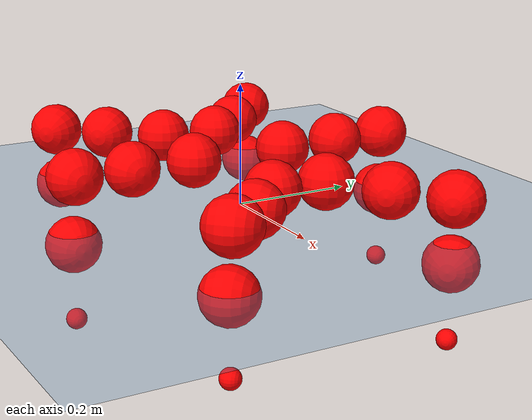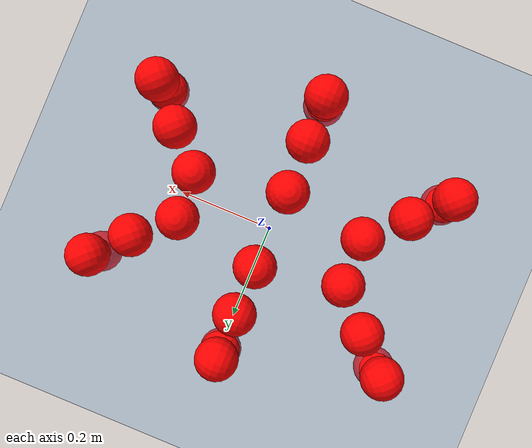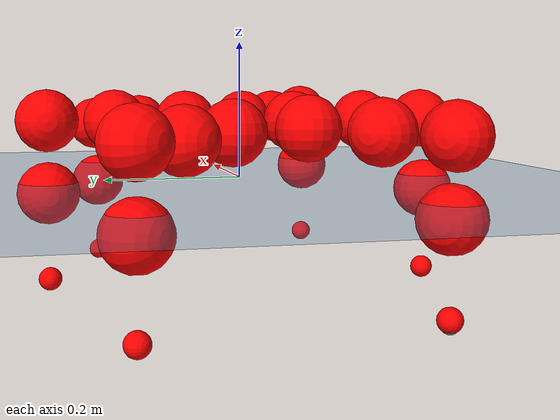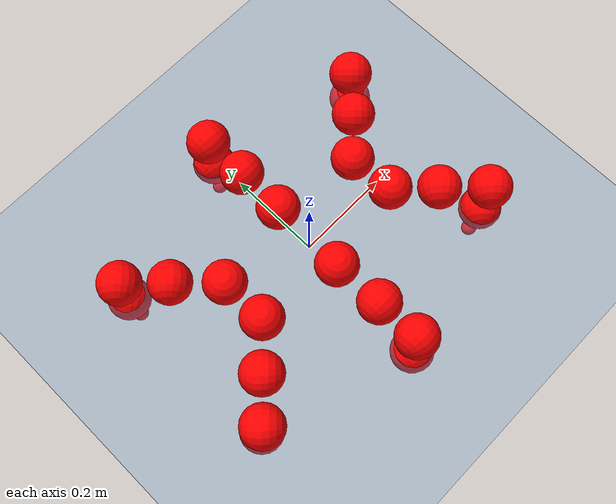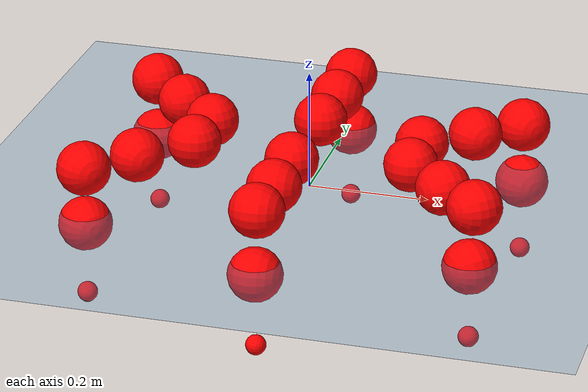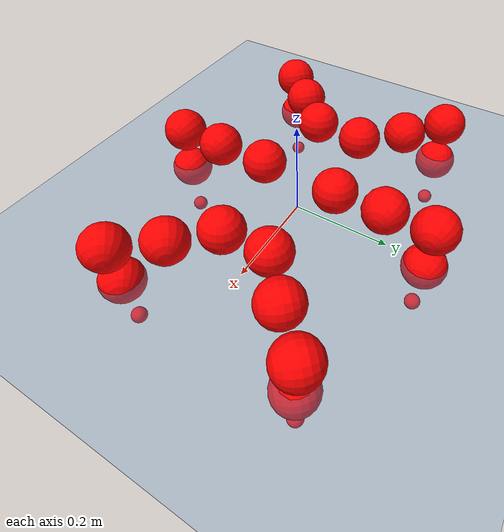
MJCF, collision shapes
<mujoco model="Golem">
  <compiler angle="radian" assetdir="assets" balanceinertia="true" inertiafromgeom="false"/>

  <option timestep="0.005" density="1.2" viscosity="2e-05"/>

  <size nkey="1"/>

  <visual>
    <quality shadowsize="8192"/>
    <map shadowclip="0.5"/>
  </visual>

  <default>
    <default class="/">
      <joint armature="0.01" damping="0.01" frictionloss="0.01"/>
      <geom contype="0" conaffinity="0" group="1" solref="-1000 -80"/>
      <site size="0.01 0.005 0.005" group="5"/>
      <general forcelimited="true" biastype="affine" gainprm="25" biasprm="0 -25 -0.5"/>
      <default class="visual">
        <geom type="mesh" group="2"/>
      </default>
      <default class="collision">
        <geom group="3"/>
      </default>
      <default class="foot">
        <geom size="0.01 0 0" condim="6" group="4" priority="1" solimp="0.015 1 0.01"/>
      </default>
      <default class="reward_collision_sphere">
        <geom group="5" rgba="1 0 0 1"/>
      </default>
    </default>
  </default>

  <asset>
    <texture type="skybox" colorspace="auto" name="//unnamed_texture_0" builtin="gradient" rgb1="0.95 0.95 0.95" rgb2="0.95 0.95 0.95" width="100" height="600"/>
    <texture type="2d" colorspace="auto" name="texplane" builtin="checker" rgb1="0.345 0.575 0.748" rgb2="0.345 0.575 0.748" markrgb="1 1 1" width="512" height="512"/>
    <material name="MatPlane" class="/" texture="texplane" texuniform="true" texrepeat="2 2" specular="0.9"/>
    <mesh name="body" class="/" file="body.stl" scale="0.001 0.001 0.001"/>
    <mesh name="coxa" class="/" file="coxa.stl" scale="0.001 0.001 0.001"/>
    <mesh name="femur" class="/" file="femur.stl" scale="0.001 0.001 0.001"/>
    <mesh name="tibia" class="/" file="tibia.stl" scale="0.001 0.001 0.001"/>
    <mesh name="tarsus" class="/" file="tarsus.stl" scale="0.001 0.001 0.001"/>
  </asset>

  <worldbody>
    <geom name="floor" class="/" size="100 100 0.125" type="plane" group="0" material="MatPlane"/>
    <light name="toplight_shadow" class="/" pos="0 0 5" dir="0.0990148 0.0990148 -0.990148" type="directional" ambient="0.04 0.04 0.04" diffuse="0.55 0.55 0.55" specular="0.12 0.12 0.12"/>
    <light name="toplight_fill" class="/" pos="0 0 5" dir="0.0990148 0.0990148 -0.990148" type="directional" castshadow="false" ambient="0.04 0.04 0.04" diffuse="0.3 0.3 0.3" specular="0.08 0.08 0.08"/>
    <body name="trunk" pos="0.000242369 -0.00235477 0.00156397" quat="0.999999 0.000460069 -0.00153359 -0.000492536">
      <inertial pos="0.000986958 -0.000872254 -0.00351361" quat="0.999973 -0.00156558 -0.00313681 0.00653117" mass="5.32554" diaginertia="0.0198968 0.00560152 0.0347165"/>
      <joint name="//unnamed_joint_0" type="free"/>
      <geom name="//unnamed_geom_1" class="/" pos="0 0 0.0821064" quat="1 0 0 0" type="mesh" rgba="0.9 0.9 0.9 1" mesh="body"/>
      <site name="imu" class="/" pos="0.140463 -0.0184976 0.0960344" size="0.011097"/>
      <camera name="track" class="/" pos="0 -1.78137 0" quat="0.707107 0.707107 0 0" mode="trackcom"/>
      <camera name="ego_camera" class="/" pos="0.150216 0 0.128291" quat="-0.5 -0.5 0.5 0.5"/>
      <body name="coxa_RR" pos="-0.204844 -0.07481 0.081293" quat="0.384401 -0.00276504 0.000656548 -0.923162">
        <inertial pos="-0.00270365 0.00155929 0.000718023" quat="0.999996 -0.00195472 0.00117723 -0.00140807" mass="0.25286" diaginertia="0.0196626 0.00514786 0.0308363"/>
        <joint name="coxa_joint_RR" class="/" pos="0 0 0" axis="-0.000571781 0.00127016 -0.999999" stiffness="0.000874612" range="-3.12647 3.10572" armature="0.0126518" damping="0.000504016" frictionloss="0.0116984"/>
        <geom name="//unnamed_geom_2" class="/" type="mesh" rgba="0.2 0.2 0.2 1" mesh="coxa"/>
        <geom name="//unnamed_geom_3" class="reward_collision_sphere" size="0.0443881" pos="-0.0346652 0 0"/>
        <body name="femur_RR" pos="0.0700884 -8.48408e-05 -0.00179716" quat="0.499082 -0.501965 0.498398 0.500547">
          <inertial pos="0.000392699 -0.00616476 -0.000417195" quat="0.999976 -0.00107257 -6.84927e-05 0.00684392" mass="0.294949" diaginertia="0.0214557 0.00589317 0.0368234"/>
          <joint name="femur_joint_RR" class="/" pos="0 0 0" axis="-0.00765254 0.00624398 -0.999951" stiffness="0.00222203" range="-3.10987 3.10974" armature="0.00910337" damping="0.0187603" frictionloss="0.0112568"/>
          <geom name="//unnamed_geom_4" class="/" type="mesh" rgba="0.9 0.9 0.9 1" mesh="femur"/>
          <geom name="//unnamed_geom_5" class="reward_collision_sphere" size="0.0443881"/>
          <body name="tibia_RR" pos="0.00181991 -0.096209 0.00100243" quat="0.000237597 1 0.000301651 0.00033944">
            <inertial pos="0.000618449 -0.00532209 0.00228749" quat="1 -0.00030873 0.000506948 0.000373812" mass="0.277539" diaginertia="0.020814 0.00573364 0.0348819"/>
            <joint name="tibia_joint_RR" class="/" pos="0 0 0" axis="-0.00991625 -0.0222116 0.999704" stiffness="0.0153808" range="-3.24628 3.18135" armature="0.0115087" damping="0.0292278" frictionloss="0.00717864"/>
            <geom name="//unnamed_geom_6" class="/" type="mesh" rgba="0.2 0.2 0.2 1" mesh="tibia"/>
            <geom name="//unnamed_geom_7" class="reward_collision_sphere" size="0.0443881"/>
            <body name="tarsus_RR" pos="0.100741 -0.00281915 0.00570143" quat="1 0.000188661 7.71166e-05 8.93701e-05">
              <inertial pos="0.0699296 -0.00204134 -0.00216418" quat="0.500167 0.499909 0.499884 0.500039" mass="0.289888" diaginertia="0.022389 0.0057839 0.0334838"/>
              <joint name="tarsus_joint_RR" class="/" pos="0 0 0" axis="-0.000394063 0.0075402 0.999971" stiffness="0.00707321" range="-3.12733 3.09844" armature="0.0103414" damping="0" frictionloss="0.0123817"/>
              <geom name="//unnamed_geom_8" class="/" type="mesh" rgba="0.9 0.9 0.9 1" mesh="tarsus"/>
              <geom name="foot_1" class="foot" size="0.0126924" pos="0.129417 0 0" quat="0 -0.707107 0 0.707107"/>
              <geom name="//unnamed_geom_10" class="reward_collision_sphere" size="0.0443881"/>
              <geom name="//unnamed_geom_11" class="reward_collision_sphere" size="0.0166455" pos="0.124217 0 0"/>
              <site name="foot_1" class="foot" pos="0.129417 0 0" quat="0 -0.707107 0 0.707107" size="0.011097"/>
            </body>
          </body>
        </body>
      </body>
      <body name="coxa_RM" pos="-0.00665735 -0.113041 0.0822524" quat="0.70757 -0.000658961 -1.79573e-05 -0.706642">
        <inertial pos="0.0020434 -0.000614242 0.00385043" quat="0.999487 -0.00426512 -0.0280646 0.0148085" mass="0.251214" diaginertia="0.0193107 0.00479416 0.0307693"/>
        <joint name="coxa_joint_RM" class="/" pos="0 0 0" axis="0.0287153 0.00591005 -0.99957" stiffness="0.000959775" range="-3.14293 3.14606" armature="0.0100295" damping="0.027064" frictionloss="0.0101625"/>
        <geom name="//unnamed_geom_12" class="/" type="mesh" rgba="0.2 0.2 0.2 1" mesh="coxa"/>
        <geom name="//unnamed_geom_13" class="reward_collision_sphere" size="0.0443881" pos="-0.0346652 0 0"/>
        <body name="femur_RM" pos="0.0742045 0.00229191 0.000939793" quat="0.500967 -0.499777 0.499189 0.500066">
          <inertial pos="0.000355101 -0.00239929 -0.000119194" quat="0.99993 0.00204754 -0.0113316 0.00253119" mass="0.269415" diaginertia="0.0214393 0.00549217 0.0344719"/>
          <joint name="femur_joint_RM" class="/" pos="0 0 0" axis="0.000364886 -0.00188641 -0.999998" stiffness="0.0179455" range="-3.20773 3.13679" armature="0.00980238" damping="0.0107361" frictionloss="0.00858917"/>
          <geom name="//unnamed_geom_14" class="/" type="mesh" rgba="0.9 0.9 0.9 1" mesh="femur"/>
          <geom name="//unnamed_geom_15" class="reward_collision_sphere" size="0.0443881"/>
          <body name="tibia_RM" pos="-0.000972584 -0.0956448 7.44751e-06" quat="-0.000181012 0.999999 -0.00106678 -0.000749748">
            <inertial pos="0.00210585 0.000176079 -0.00290172" quat="0.999935 -0.00962991 -0.000367885 0.00614408" mass="0.255275" diaginertia="0.0202992 0.00562653 0.0347818"/>
            <joint name="tibia_joint_RM" class="/" pos="0 0 0" axis="-0.0256592 -0.00192123 0.999669" range="-3.12575 3.09937" armature="0.014177" damping="0.0160571" frictionloss="0.00821643"/>
            <geom name="//unnamed_geom_16" class="/" type="mesh" rgba="0.2 0.2 0.2 1" mesh="tibia"/>
            <geom name="//unnamed_geom_17" class="reward_collision_sphere" size="0.0443881"/>
            <body name="tarsus_RM" pos="0.108837 0.00516089 0.00229467" quat="0.999999 -0.000530352 -0.000519499 0.000828289">
              <inertial pos="0.0698113 -0.0017121 0.000591811" quat="0.501467 0.500149 0.500762 0.497613" mass="0.246857" diaginertia="0.0188815 0.00526506 0.0328524"/>
              <joint name="tarsus_joint_RM" class="/" pos="0 0 0" axis="-0.00363831 -0.0021851 0.999991" range="-3.11725 3.09388" armature="0.0109418" damping="0" frictionloss="0.0122819"/>
              <geom name="//unnamed_geom_18" class="/" type="mesh" rgba="0.9 0.9 0.9 1" mesh="tarsus"/>
              <geom name="foot_2" class="foot" size="0.0115946" pos="0.129417 0 0" quat="0 -0.707107 0 0.707107"/>
              <geom name="//unnamed_geom_20" class="reward_collision_sphere" size="0.0443881"/>
              <geom name="//unnamed_geom_21" class="reward_collision_sphere" size="0.0166455" pos="0.124217 0 0"/>
              <site name="foot_2" class="foot" pos="0.129417 0 0" quat="0 -0.707107 0 0.707107" size="0.011097"/>
            </body>
          </body>
        </body>
      </body>
      <body name="coxa_RF" pos="0.206807 -0.0674811 0.079021" quat="0.923855 0.000231565 -6.96545e-05 -0.382742">
        <inertial pos="0.00549587 0.00233084 0.00286575" quat="0.999978 0.00314251 0.00558907 0.00141573" mass="0.267271" diaginertia="0.0188231 0.00523822 0.0306323"/>
        <joint name="coxa_joint_RF" class="/" pos="0 0 0" axis="-0.00481153 -0.0119968 -0.999916" stiffness="0.0188778" range="-3.0981 3.16698" armature="0.00990349" damping="0" frictionloss="0.00849909"/>
        <geom name="//unnamed_geom_22" class="/" type="mesh" rgba="0.2 0.2 0.2 1" mesh="coxa"/>
        <geom name="//unnamed_geom_23" class="reward_collision_sphere" size="0.0443881" pos="-0.0346652 0 0"/>
        <body name="femur_RF" pos="0.0635156 0.000290991 -0.00114418" quat="0.501078 -0.498846 0.499578 0.500495">
          <inertial pos="0.002391 0.000549836 -0.00194069" quat="0.999997 0.00208202 0.00121202 0.000917774" mass="0.268782" diaginertia="0.0210852 0.00553581 0.035297"/>
          <joint name="femur_joint_RF" class="/" pos="0 0 0" axis="-0.00682583 -0.00118834 -0.999976" range="-3.13414 3.12224" armature="0.0118884" damping="0.0148735" frictionloss="0.0123645"/>
          <geom name="//unnamed_geom_24" class="/" type="mesh" rgba="0.9 0.9 0.9 1" mesh="femur"/>
          <geom name="//unnamed_geom_25" class="reward_collision_sphere" size="0.0443881"/>
          <body name="tibia_RF" pos="-0.00729993 -0.0986472 -0.00357537" quat="-2.18746e-05 1 0.000420058 0.000280836">
            <inertial pos="4.33036e-05 0.00492914 0.00322153" quat="0.999744 -0.0206767 0.00852857 -0.00354823" mass="0.298773" diaginertia="0.0220486 0.00592009 0.0349002"/>
            <joint name="tibia_joint_RF" class="/" pos="0 0 0" axis="-0.00982304 0.0206712 0.999738" stiffness="0.0376815" range="-3.13838 3.16347" armature="0.0119465" damping="0.0385291" frictionloss="0.0116661"/>
            <geom name="//unnamed_geom_26" class="/" type="mesh" rgba="0.2 0.2 0.2 1" mesh="tibia"/>
            <geom name="//unnamed_geom_27" class="reward_collision_sphere" size="0.0443881"/>
            <body name="tarsus_RF" pos="0.101889 -0.00152985 0.00587126" quat="1 2.04768e-06 5.95488e-06 -3.45855e-05">
              <inertial pos="0.0717961 0.00233613 -0.00243905" quat="0.497641 0.49642 0.502736 0.503167" mass="0.278453" diaginertia="0.0204935 0.00585072 0.0357008"/>
              <joint name="tarsus_joint_RF" class="/" pos="0 0 0" axis="0.00953446 -0.0309605 0.999475" stiffness="0.00103845" range="-3.18677 3.09378" armature="0.0104115" damping="0.00997447" frictionloss="0.0106974"/>
              <geom name="//unnamed_geom_28" class="/" type="mesh" rgba="0.9 0.9 0.9 1" mesh="tarsus"/>
              <geom name="foot_3" class="foot" size="0.0111507" pos="0.129417 0 0" quat="0 -0.707107 0 0.707107"/>
              <geom name="//unnamed_geom_30" class="reward_collision_sphere" size="0.0443881"/>
              <geom name="//unnamed_geom_31" class="reward_collision_sphere" size="0.0166455" pos="0.124217 0 0"/>
              <site name="foot_3" class="foot" pos="0.129417 0 0" quat="0 -0.707107 0 0.707107" size="0.011097"/>
            </body>
          </body>
        </body>
      </body>
      <body name="coxa_LR" pos="-0.205567 0.0752467 0.0767682" quat="0.384254 0.00104289 -0.000293913 0.923227">
        <inertial pos="0.000158493 -0.00348594 0.0040507" quat="0.999936 -0.0106767 0.00328467 -0.00193025" mass="0.275243" diaginertia="0.0207801 0.00589981 0.0356844"/>
        <joint name="coxa_joint_LR" class="/" pos="0 0 0" axis="0.00748988 -0.0114888 -0.999906" range="-3.14542 3.04298" armature="0.0113835" damping="0.0178588" frictionloss="0.00980492"/>
        <geom name="//unnamed_geom_32" class="/" type="mesh" rgba="0.2 0.2 0.2 1" mesh="coxa"/>
        <geom name="//unnamed_geom_33" class="reward_collision_sphere" size="0.0443881" pos="-0.0346652 0 0"/>
        <body name="femur_LR" pos="0.0706941 -0.00131412 -0.00412338" quat="0.499861 -0.500324 0.499822 0.499993">
          <inertial pos="0.00219424 -0.00229508 0.00137416" quat="0.999609 0.0163107 0.000438478 0.0226986" mass="0.265357" diaginertia="0.0193751 0.00535028 0.0345244"/>
          <joint name="femur_joint_LR" class="/" pos="0 0 0" axis="0.0374071 0.00200093 0.999298" range="-3.14064 3.15788" armature="0.0075136" damping="0.0110387" frictionloss="0.0114918"/>
          <geom name="//unnamed_geom_34" class="/" type="mesh" rgba="0.9 0.9 0.9 1" mesh="femur"/>
          <geom name="//unnamed_geom_35" class="reward_collision_sphere" size="0.0443881"/>
          <body name="tibia_LR" pos="-0.00404138 -0.096117 0.00237264" quat="0.000134415 1 -0.000534273 -0.000360061">
            <inertial pos="0.000310543 0.00135765 -0.0030626" quat="0.999947 -0.00267859 -0.00782757 -0.00613816" mass="0.264559" diaginertia="0.0217568 0.00577528 0.0353741"/>
            <joint name="tibia_joint_LR" class="/" pos="0 0 0" axis="-0.00601143 0.00405887 -0.999974" stiffness="0.00444882" range="-3.252 3.09051" armature="0.0130244" damping="0.0127285" frictionloss="0.0112549"/>
            <geom name="//unnamed_geom_36" class="/" type="mesh" rgba="0.2 0.2 0.2 1" mesh="tibia"/>
            <geom name="//unnamed_geom_37" class="reward_collision_sphere" size="0.0443881"/>
            <body name="tarsus_LR" pos="0.104496 0.000879879 -0.00193086" quat="1 -5.35548e-06 -1.07495e-05 8.94343e-06">
              <inertial pos="0.069011 0.00426763 0.00242901" quat="0.500043 0.500132 0.499982 0.499843" mass="0.28521" diaginertia="0.0202403 0.00502755 0.0339576"/>
              <joint name="tarsus_joint_LR" class="/" pos="0 0 0" axis="0.000770247 0.000871205 -0.999999" range="-3.1851 3.11601" armature="0.0107994" damping="0.0149482" frictionloss="0.0116576"/>
              <geom name="//unnamed_geom_38" class="/" type="mesh" rgba="0.9 0.9 0.9 1" mesh="tarsus"/>
              <geom name="foot_4" class="foot" size="0.0107001" pos="0.129417 0 0" quat="0.707107 0 -0.707107 0"/>
              <geom name="//unnamed_geom_40" class="reward_collision_sphere" size="0.0443881"/>
              <geom name="//unnamed_geom_41" class="reward_collision_sphere" size="0.0166455" pos="0.124217 0 0"/>
              <site name="foot_4" class="foot" pos="0.129417 0 0" quat="0.707107 0 -0.707107 0" size="0.011097"/>
            </body>
          </body>
        </body>
      </body>
      <body name="coxa_LM" pos="-0.00332426 0.118989 0.0829732" quat="0.707692 -0.000544448 0.000528163 0.706521">
        <inertial pos="0.00122609 0.000866544 0.0053516" quat="0.999933 -0.00963437 0.0064121 -0.000915087" mass="0.276734" diaginertia="0.0211313 0.00573188 0.0358771"/>
        <joint name="coxa_joint_LM" class="/" pos="0 0 0" axis="-0.00249103 -0.00122785 -0.999996" stiffness="0.0129852" range="-3.1872 3.11201" armature="0.0119212" damping="0.0248962" frictionloss="0.0109924"/>
        <geom name="//unnamed_geom_42" class="/" type="mesh" rgba="0.2 0.2 0.2 1" mesh="coxa"/>
        <geom name="//unnamed_geom_43" class="reward_collision_sphere" size="0.0443881" pos="-0.0346652 0 0"/>
        <body name="femur_LM" pos="0.0680634 -0.000760762 0.00194842" quat="0.499298 -0.499642 0.500878 0.500181">
          <inertial pos="0.00246318 -0.00158697 0.00673975" quat="0.999912 -0.00276877 0.00440259 -0.0122003" mass="0.28049" diaginertia="0.0205235 0.00575154 0.0351533"/>
          <joint name="femur_joint_LM" class="/" pos="0 0 0" axis="0.00294314 -0.00207741 0.999994" stiffness="0.00260911" range="-3.09953 3.26637" armature="0.0116742" damping="0.0326593" frictionloss="0.0131673"/>
          <geom name="//unnamed_geom_44" class="/" type="mesh" rgba="0.9 0.9 0.9 1" mesh="femur"/>
          <geom name="//unnamed_geom_45" class="reward_collision_sphere" size="0.0443881"/>
          <body name="tibia_LM" pos="-0.00113515 -0.0954139 0.00111859" quat="2.16617e-05 1 -9.47636e-06 9.86377e-06">
            <inertial pos="0.000380451 0.000697211 0.000710579" quat="0.999931 0.00847986 0.00459272 0.00669985" mass="0.295082" diaginertia="0.0224558 0.00614026 0.0381241"/>
            <joint name="tibia_joint_LM" class="/" pos="0 0 0" axis="-0.0170141 -0.00700954 -0.999831" stiffness="0.00982356" range="-3.20859 3.14505" armature="0.00701509" damping="0.0382167" frictionloss="0.00924238"/>
            <geom name="//unnamed_geom_46" class="/" type="mesh" rgba="0.2 0.2 0.2 1" mesh="tibia"/>
            <geom name="//unnamed_geom_47" class="reward_collision_sphere" size="0.0443881"/>
            <body name="tarsus_LM" pos="0.103508 -0.000199038 -5.36185e-05" quat="1 0.000100592 -3.90432e-05 -7.10263e-05">
              <inertial pos="0.0689325 0.00283979 0.000361954" quat="0.500092 0.500183 0.498947 0.500776" mass="0.294823" diaginertia="0.021873 0.00665789 0.0372492"/>
              <joint name="tarsus_joint_LM" class="/" pos="0 0 0" axis="-0.000264065 -0.00430706 -0.999991" range="-3.13926 3.15106" armature="0.00997737" damping="0" frictionloss="0.00764245"/>
              <geom name="//unnamed_geom_48" class="/" type="mesh" rgba="0.9 0.9 0.9 1" mesh="tarsus"/>
              <geom name="foot_5" class="foot" size="0.0107955" pos="0.129417 0 0" quat="0.707107 0 -0.707107 0"/>
              <geom name="//unnamed_geom_50" class="reward_collision_sphere" size="0.0443881"/>
              <geom name="//unnamed_geom_51" class="reward_collision_sphere" size="0.0166455" pos="0.124217 0 0"/>
              <site name="foot_5" class="foot" pos="0.129417 0 0" quat="0.707107 0 -0.707107 0" size="0.011097"/>
            </body>
          </body>
        </body>
      </body>
      <body name="coxa_LF" pos="0.201895 0.0787542 0.0752154" quat="0.923784 0.000149957 0.000219055 0.382915">
        <inertial pos="0.00530125 0.00690299 0.00218612" quat="0.999964 -0.00454894 0.00580028 -0.00415588" mass="0.281932" diaginertia="0.021348 0.00631466 0.034828"/>
        <joint name="coxa_joint_LF" class="/" pos="0 0 0" axis="-0.00581689 0.0258755 -0.999648" range="-3.12495 3.14199" armature="0.0119726" damping="0.0194066" frictionloss="0.0126205"/>
        <geom name="//unnamed_geom_52" class="/" type="mesh" rgba="0.2 0.2 0.2 1" mesh="coxa"/>
        <geom name="//unnamed_geom_53" class="reward_collision_sphere" size="0.0443881" pos="-0.0346652 0 0"/>
        <body name="femur_LF" pos="0.0659254 -0.00460903 -0.00434826" quat="0.499039 -0.500227 0.500953 0.499779">
          <inertial pos="-0.000882209 0.000853328 0.001516" quat="1 -5.32695e-05 0.00015589 -0.000468584" mass="0.293555" diaginertia="0.0232615 0.00591565 0.0366231"/>
          <joint name="femur_joint_LF" class="/" pos="0 0 0" axis="0.0243009 0.00319344 0.9997" stiffness="0.00641256" range="-3.14146 3.07902" armature="0.0124283" damping="0.0103848" frictionloss="0.0107086"/>
          <geom name="//unnamed_geom_54" class="/" type="mesh" rgba="0.9 0.9 0.9 1" mesh="femur"/>
          <geom name="//unnamed_geom_55" class="reward_collision_sphere" size="0.0443881"/>
          <body name="tibia_LF" pos="0.00601378 -0.0972843 0.00301959" quat="-8.33534e-05 1 -0.000110213 0.000125097">
            <inertial pos="-0.00118419 -0.00461634 0.000355217" quat="0.999955 0.00324187 0.00122549 -0.00882557" mass="0.261907" diaginertia="0.0205668 0.00538027 0.0342972"/>
            <joint name="tibia_joint_LF" class="/" pos="0 0 0" axis="-4.10365e-05 0.00844771 -0.999964" stiffness="0.034601" range="-3.10163 3.2008" armature="0.0104886" damping="0.0283994" frictionloss="0.0121159"/>
            <geom name="//unnamed_geom_56" class="/" type="mesh" rgba="0.2 0.2 0.2 1" mesh="tibia"/>
            <geom name="//unnamed_geom_57" class="reward_collision_sphere" size="0.0443881"/>
            <body name="tarsus_LF" pos="0.101671 -0.0022431 0.00267427" quat="1 0.000141909 5.66157e-05 5.19632e-05">
              <inertial pos="0.0763618 0.00260533 -0.002002" quat="0.527323 0.502989 0.489231 0.479151" mass="0.273512" diaginertia="0.021291 0.00571404 0.0341122"/>
              <joint name="tarsus_joint_LF" class="/" pos="0 0 0" axis="-0.028788 -0.0244542 -0.999286" stiffness="0.00941026" range="-3.14031 3.18449" armature="0.0109517" damping="0.0241975" frictionloss="0.0109797"/>
              <geom name="//unnamed_geom_58" class="/" type="mesh" rgba="0.9 0.9 0.9 1" mesh="tarsus"/>
              <geom name="foot_6" class="foot" size="0.0102377" pos="0.129417 0 0" quat="0.707107 0 -0.707107 0"/>
              <geom name="//unnamed_geom_60" class="reward_collision_sphere" size="0.0443881"/>
              <geom name="//unnamed_geom_61" class="reward_collision_sphere" size="0.0166455" pos="0.124217 0 0"/>
              <site name="foot_6" class="foot" pos="0.129417 0 0" quat="0.707107 0 -0.707107 0" size="0.011097"/>
            </body>
          </body>
        </body>
      </body>
    </body>
  </worldbody>

  <contact>
    <pair class="/" geom1="floor" geom2="foot_1" name="//unnamed_contact_0"/>
    <pair class="/" geom1="floor" geom2="foot_2" name="//unnamed_contact_1"/>
    <pair class="/" geom1="floor" geom2="foot_3" name="//unnamed_contact_2"/>
    <pair class="/" geom1="floor" geom2="foot_4" name="//unnamed_contact_3"/>
    <pair class="/" geom1="floor" geom2="foot_5" name="//unnamed_contact_4"/>
    <pair class="/" geom1="floor" geom2="foot_6" name="//unnamed_contact_5"/>
  </contact>

  <actuator>
    <general name="coxa_joint_RR" class="/" joint="coxa_joint_RR" forcerange="-8.25281 8.25281" gainprm="26.5394" biasprm="0 -26.5394 -0.569031"/>
    <general name="femur_joint_RR" class="/" joint="femur_joint_RR" forcerange="-8.67165 8.67165" gainprm="26.5394" biasprm="0 -26.5394 -0.569031"/>
    <general name="tibia_joint_RR" class="/" joint="tibia_joint_RR" forcerange="-8.26599 8.26599" gainprm="26.5394" biasprm="0 -26.5394 -0.569031"/>
    <general name="tarsus_joint_RR" class="/" joint="tarsus_joint_RR" forcerange="-7.08511 7.08511" gainprm="26.5394" biasprm="0 -26.5394 -0.569031"/>
    <general name="coxa_joint_RM" class="/" joint="coxa_joint_RM" forcerange="-7.8297 7.8297" gainprm="26.5394" biasprm="0 -26.5394 -0.569031"/>
    <general name="femur_joint_RM" class="/" joint="femur_joint_RM" forcerange="-7.05547 7.05547" gainprm="26.5394" biasprm="0 -26.5394 -0.569031"/>
    <general name="tibia_joint_RM" class="/" joint="tibia_joint_RM" forcerange="-8.6198 8.6198" gainprm="26.5394" biasprm="0 -26.5394 -0.569031"/>
    <general name="tarsus_joint_RM" class="/" joint="tarsus_joint_RM" forcerange="-8.28177 8.28177" gainprm="26.5394" biasprm="0 -26.5394 -0.569031"/>
    <general name="coxa_joint_RF" class="/" joint="coxa_joint_RF" forcerange="-9.10789 9.10789" gainprm="26.5394" biasprm="0 -26.5394 -0.569031"/>
    <general name="femur_joint_RF" class="/" joint="femur_joint_RF" forcerange="-8.81446 8.81446" gainprm="26.5394" biasprm="0 -26.5394 -0.569031"/>
    <general name="tibia_joint_RF" class="/" joint="tibia_joint_RF" forcerange="-8.48425 8.48425" gainprm="26.5394" biasprm="0 -26.5394 -0.569031"/>
    <general name="tarsus_joint_RF" class="/" joint="tarsus_joint_RF" forcerange="-8.81792 8.81792" gainprm="26.5394" biasprm="0 -26.5394 -0.569031"/>
    <general name="coxa_joint_LR" class="/" joint="coxa_joint_LR" forcerange="-8.03648 8.03648" gainprm="26.5394" biasprm="0 -26.5394 -0.569031"/>
    <general name="femur_joint_LR" class="/" joint="femur_joint_LR" forcerange="-8.13236 8.13236" gainprm="26.5394" biasprm="0 -26.5394 -0.569031"/>
    <general name="tibia_joint_LR" class="/" joint="tibia_joint_LR" forcerange="-7.449 7.449" gainprm="26.5394" biasprm="0 -26.5394 -0.569031"/>
    <general name="tarsus_joint_LR" class="/" joint="tarsus_joint_LR" forcerange="-8.53995 8.53995" gainprm="26.5394" biasprm="0 -26.5394 -0.569031"/>
    <general name="coxa_joint_LM" class="/" joint="coxa_joint_LM" forcerange="-7.43189 7.43189" gainprm="26.5394" biasprm="0 -26.5394 -0.569031"/>
    <general name="femur_joint_LM" class="/" joint="femur_joint_LM" forcerange="-7.39967 7.39967" gainprm="26.5394" biasprm="0 -26.5394 -0.569031"/>
    <general name="tibia_joint_LM" class="/" joint="tibia_joint_LM" forcerange="-8.20918 8.20918" gainprm="26.5394" biasprm="0 -26.5394 -0.569031"/>
    <general name="tarsus_joint_LM" class="/" joint="tarsus_joint_LM" forcerange="-8.33277 8.33277" gainprm="26.5394" biasprm="0 -26.5394 -0.569031"/>
    <general name="coxa_joint_LF" class="/" joint="coxa_joint_LF" forcerange="-8.2064 8.2064" gainprm="26.5394" biasprm="0 -26.5394 -0.569031"/>
    <general name="femur_joint_LF" class="/" joint="femur_joint_LF" forcerange="-7.91374 7.91374" gainprm="26.5394" biasprm="0 -26.5394 -0.569031"/>
    <general name="tibia_joint_LF" class="/" joint="tibia_joint_LF" forcerange="-7.9594 7.9594" gainprm="26.5394" biasprm="0 -26.5394 -0.569031"/>
    <general name="tarsus_joint_LF" class="/" joint="tarsus_joint_LF" forcerange="-7.86364 7.86364" gainprm="26.5394" biasprm="0 -26.5394 -0.569031"/>
  </actuator>

  <sensor>
    <gyro site="imu" name="imu_angular_velocity"/>
    <velocimeter site="imu" name="imu_linear_velocity"/>
    <framelinvel objtype="site" objname="foot_1" name="foot_1_global_linear_velocity"/>
    <framelinvel objtype="site" objname="foot_2" name="foot_2_global_linear_velocity"/>
    <framelinvel objtype="site" objname="foot_3" name="foot_3_global_linear_velocity"/>
    <framelinvel objtype="site" objname="foot_4" name="foot_4_global_linear_velocity"/>
    <framelinvel objtype="site" objname="foot_5" name="foot_5_global_linear_velocity"/>
    <framelinvel objtype="site" objname="foot_6" name="foot_6_global_linear_velocity"/>
  </sensor>

  <keyframe>
    <key name="home" qpos="0 0 0.1457 1 0 0 0 0 0 0 0 0 0 0 0 0 0 0 0 0 0 0 0 0 0 0 0 0 0 0 0"/>
  </keyframe>
</mujoco>
